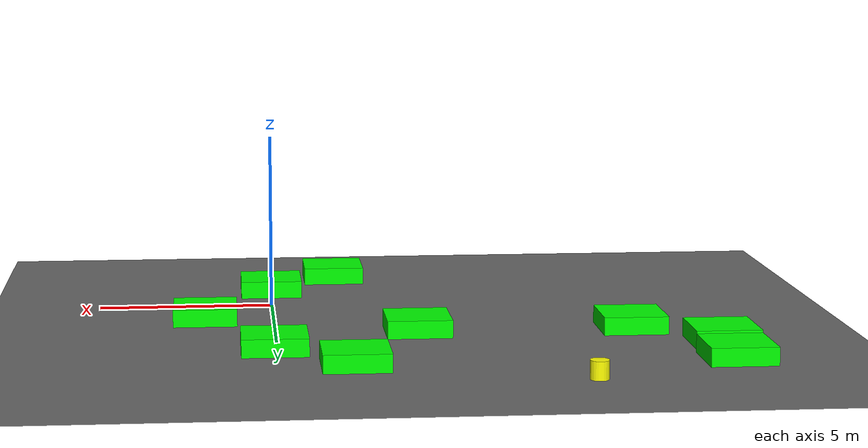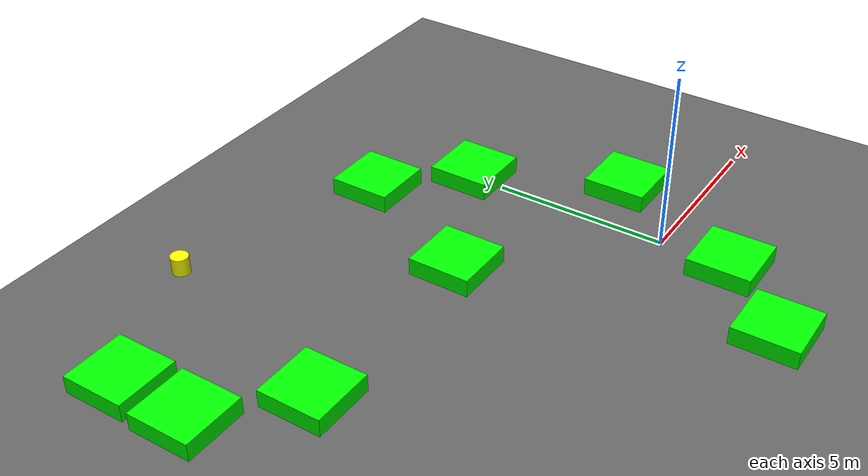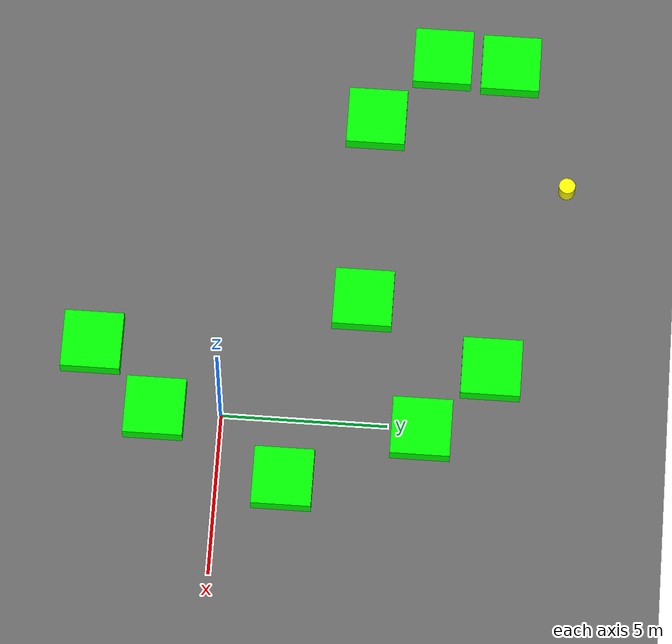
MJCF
<mujoco model="lvl4_standard_obs9_d2mid_seed1150">
    <compiler angle="degree" coordinate="local" inertiafromgeom="true"/>
    <option integrator="RK4" timestep="0.01"/>

    <asset>
        <texture builtin="gradient" height="100" rgb1="0.6 0.8 1" rgb2="0 0 0" type="skybox" width="100"/>
        <texture name="floor_texture" type="2d" builtin="checker" width="100" height="100" rgb1="0 0 0" rgb2="0.8 0.8 0.8"/>
        <material name="MatPlane" reflectance="0.5" shininess="1" specular="1" texrepeat="10 10" texture="floor_texture"/>
    </asset>

    <!-- Excluding the contact between the agent and the goal, and the agent and the floor -->
    <contact>
        <exclude body1="agent" body2="goal"/>
        <exclude body1 = "agent" body2 = "floor"/>
    </contact>

    <extension>
        <plugin plugin = "mujoco.pid">
            <instance name = "pid1">
                <config key="kp" value="2"/>
                <config key="ki" value="0"/>
                <config key="kd" value="55"/>
            </instance>
        </plugin>
    </extension>

    <worldbody>
        <light cutoff="100" diffuse="1 1 1" dir="-0 0 -1.3" directional="true" exponent="1" pos="0 0 1.3" specular=".1 .1 .1"/>
        <body name="floor" pos="0 0 0">
            <geom name="floor_geom" type="plane" size="20 20 0.1" material="MatPlane"/>
        </body>

                <body name="goal" pos="0.0000 0.0000 0">
            <geom name="goal_geom" type="plane" size="0.5 0.5 1" pos="0 0 0" rgba="1 0 0 1"/>
        </body>

                <body name="agent" pos="-8.0000 10.0000 0.250">
            <joint name="j1" type="slide" axis ="1 0 0 "/>
            <joint name="j2" type="slide" axis ="0 1 0 "/>
            <geom name="agent_geom" type="cylinder" size="0.25 0.25 0.250" rgba="1 1 0 1"/>
        </body>

        <body name="obstacle1" pos="-11.9972 8.0734 0.250">  <geom name="obstacle1_geom" type="box" size="0.9000 0.9000 0.250" rgba="0 1 0 1"/></body>
        <body name="obstacle2" pos="-1.9659 8.0243 0.250">  <geom name="obstacle2_geom" type="box" size="0.9000 0.9000 0.250" rgba="0 1 0 1"/></body>
        <body name="obstacle3" pos="-12.0823 5.9673 0.250">  <geom name="obstacle3_geom" type="box" size="0.9000 0.9000 0.250" rgba="0 1 0 1"/></body>
        <body name="obstacle4" pos="0.0800 6.0286 0.250">  <geom name="obstacle4_geom" type="box" size="0.9000 0.9000 0.250" rgba="0 1 0 1"/></body>
        <body name="obstacle5" pos="-9.9331 4.0475 0.250">  <geom name="obstacle5_geom" type="box" size="0.9000 0.9000 0.250" rgba="0 1 0 1"/></body>
        <body name="obstacle6" pos="-3.9363 4.0249 0.250">  <geom name="obstacle6_geom" type="box" size="0.9000 0.9000 0.250" rgba="0 1 0 1"/></body>
        <body name="obstacle7" pos="1.9391 2.0015 0.250">  <geom name="obstacle7_geom" type="box" size="0.9000 0.9000 0.250" rgba="0 1 0 1"/></body>
        <body name="obstacle8" pos="-0.0252 -1.9966 0.250">  <geom name="obstacle8_geom" type="box" size="0.9000 0.9000 0.250" rgba="0 1 0 1"/></body>
        <body name="obstacle9" pos="-2.0012 -4.0466 0.250">  <geom name="obstacle9_geom" type="box" size="0.9000 0.9000 0.250" rgba="0 1 0 1"/></body>

    </worldbody>

    <sensor>
<!-- SENSORS -->

        <distance name="dist1" geom1="agent_geom" geom2="obstacle1_geom" cutoff="1.5"/>
        <distance name="dist2" geom1="agent_geom" geom2="obstacle2_geom" cutoff="1.5"/>
        <distance name="dist3" geom1="agent_geom" geom2="obstacle3_geom" cutoff="1.5"/>
        <distance name="dist4" geom1="agent_geom" geom2="obstacle4_geom" cutoff="1.5"/>
        <distance name="dist5" geom1="agent_geom" geom2="obstacle5_geom" cutoff="1.5"/>
        <distance name="dist6" geom1="agent_geom" geom2="obstacle6_geom" cutoff="1.5"/>
        <distance name="dist7" geom1="agent_geom" geom2="obstacle7_geom" cutoff="1.5"/>
        <distance name="dist8" geom1="agent_geom" geom2="obstacle8_geom" cutoff="1.5"/>
        <distance name="dist9" geom1="agent_geom" geom2="obstacle9_geom" cutoff="1.5"/>
</sensor>

    <actuator>
        <plugin joint="j1" plugin="mujoco.pid" instance="pid1" />
        <plugin joint="j2" plugin="mujoco.pid" instance="pid1"/>
    </actuator>
</mujoco>
